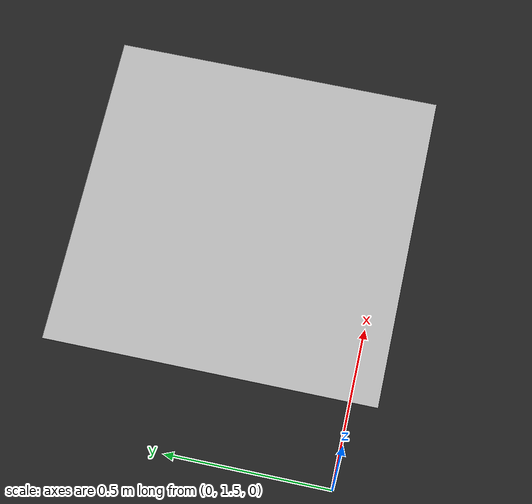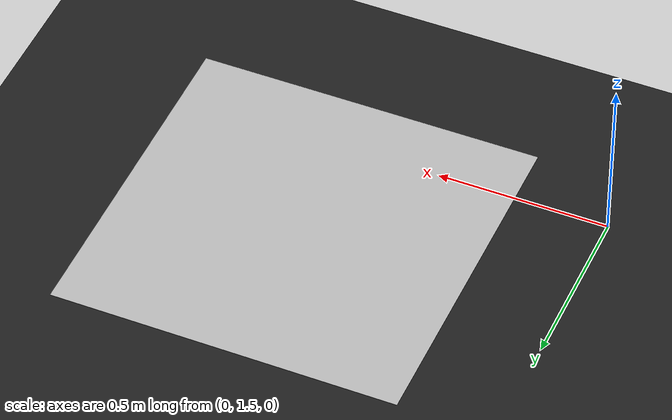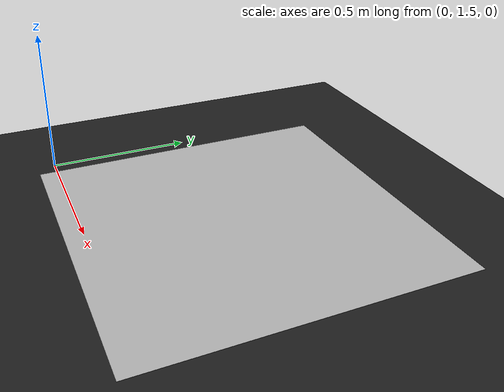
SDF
<sdf version="1.6">
 <world name="default">
  <include><uri>model://chessboard</uri><pose>0.74 1.92 0.10 0 0 -1.57</pose></include>
  <scene>
   <ambient>0 0 0 1</ambient>
   <shadows>0</shadows>
   <grid>0</grid>
   <background>0.7 0.7 0.7 1</background>
  </scene>
  <light name="sun" type="directional">
   <pose>0 0 10 0 -0 0</pose>
   <diffuse>0.8 0.8 0.8 1</diffuse>
   <specular>0.1 0.1 0.1 1</specular>
   <attenuation>
    <range>1000</range>
    <constant>0.9</constant>
    <linear>0.01</linear>
    <quadratic>0.001</quadratic>
   </attenuation>
   <direction>-0.5 0.5 -1</direction>
  </light>
  <model name="ground2">
   <pose>0 0 -0.1 0 -0 0</pose>
   <static>1</static>
   <link name="ground">
    <collision name="ground_coll"><geometry><box><size>8 8 0.01</size></box></geometry></collision>
    <visual name="ground_vis">
     <geometry><box><size>10 10 0.01</size></box></geometry>
     <material>
      <script><uri>file://media/materials/scripts/gazebo.material</uri><name>Gazebo/FlatBlack</name></script>
     </material>
    </visual>
   </link>
  </model>
  <gravity>0 0 -9.8</gravity>
  <magnetic_field>6e-06 2.3e-05 -4.2e-05</magnetic_field>
  <atmosphere type="adiabatic"/>
  <physics name="default_physics" default="0" type="ode">
   <max_step_size>0.001</max_step_size>
   <real_time_factor>1</real_time_factor>
   <real_time_update_rate>1000</real_time_update_rate>
  </physics>
  <spherical_coordinates>
   <surface_model>EARTH_WGS84</surface_model>
   <latitude_deg>0</latitude_deg>
   <longitude_deg>0</longitude_deg>
   <elevation>0</elevation>
   <heading_deg>0</heading_deg>
  </spherical_coordinates>
  <light name="user_point_light_1" type="point">
   <pose>-1.64815 0.604519 1 0 -0 0</pose>
   <diffuse>0.5 0.5 0.5 1</diffuse>
   <specular>0.1 0.1 0.1 1</specular>
   <attenuation>
    <range>20</range>
    <constant>0.5</constant>
    <linear>0.01</linear>
    <quadratic>0.001</quadratic>
   </attenuation>
   <cast_shadows>0</cast_shadows>
   <direction>0 0 -1</direction>
  </light>
  <light name="user_point_light_2" type="point">
   <pose>1.63854 1.69565 1 0 -0 0</pose>
   <diffuse>0.5 0.5 0.5 1</diffuse>
   <specular>0.1 0.1 0.1 1</specular>
   <attenuation>
    <range>20</range>
    <constant>0.5</constant>
    <linear>0.01</linear>
    <quadratic>0.001</quadratic>
   </attenuation>
   <cast_shadows>0</cast_shadows>
   <direction>0 0 -1</direction>
  </light>
  <light name="user_point_light_3" type="point">
   <pose>0.42 -3.31 1 0 -0 0</pose>
   <diffuse>0.5 0.5 0.5 1</diffuse>
   <specular>0.1 0.1 0.1 1</specular>
   <attenuation>
    <range>20</range>
    <constant>0.5</constant>
    <linear>0.01</linear>
    <quadratic>0.001</quadratic>
   </attenuation>
   <cast_shadows>0</cast_shadows>
   <direction>0 0 -1</direction>
  </light>
  <audio><device>default</device></audio>
 </world>
</sdf>

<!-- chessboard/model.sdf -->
<sdf version="1.4">
   <model name="chessboard">
      <static>true</static>
      <pose>2 -2 0.1 0 0 4.712</pose>
      <link name="link">
         <collision name="collision">
            <geometry>
               <plane>
                  <normal>0 0 1</normal>
                  <size>1 1</size>
               </plane>
            </geometry>
            <surface>
               <friction>
                  <ode>
                     <mu>100</mu>
                     <mu2>50</mu2>
                  </ode>
               </friction>
            </surface>
         </collision>
         <visual name="visual">
            <cast_shadows>false</cast_shadows>
            <geometry>
               <plane>
                  <normal>0 0 1</normal>
                  <size>1 1</size>
               </plane>
            </geometry>
            <material>
               <script>
                  <uri>model://chessboard/materials/scripts</uri>
                  <uri>model://chessboard/materials/textures/</uri>
                  <name>qrcode/Image</name>
               </script>
            </material>
         </visual>
      </link>
   </model>
</sdf>
